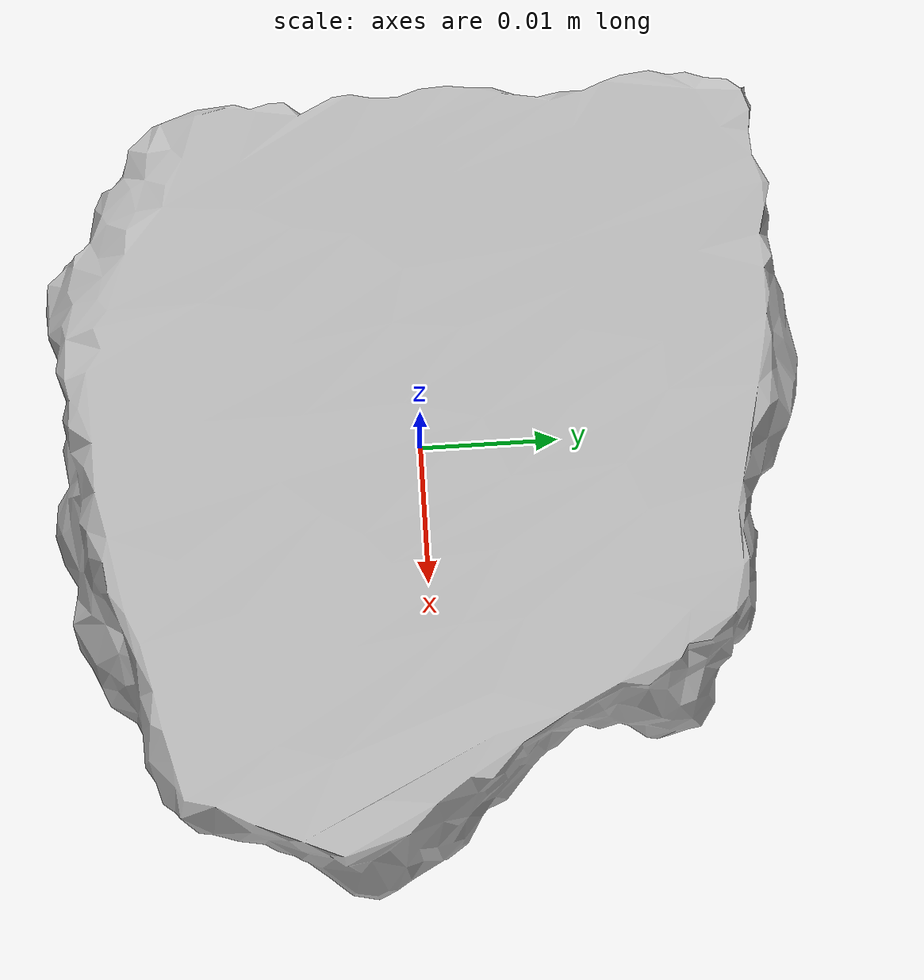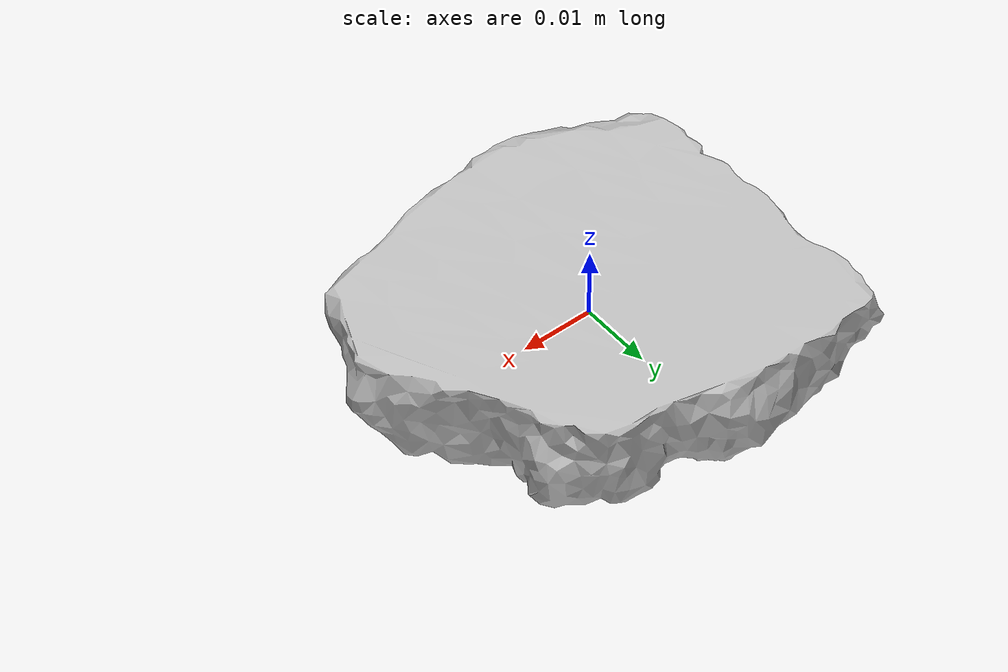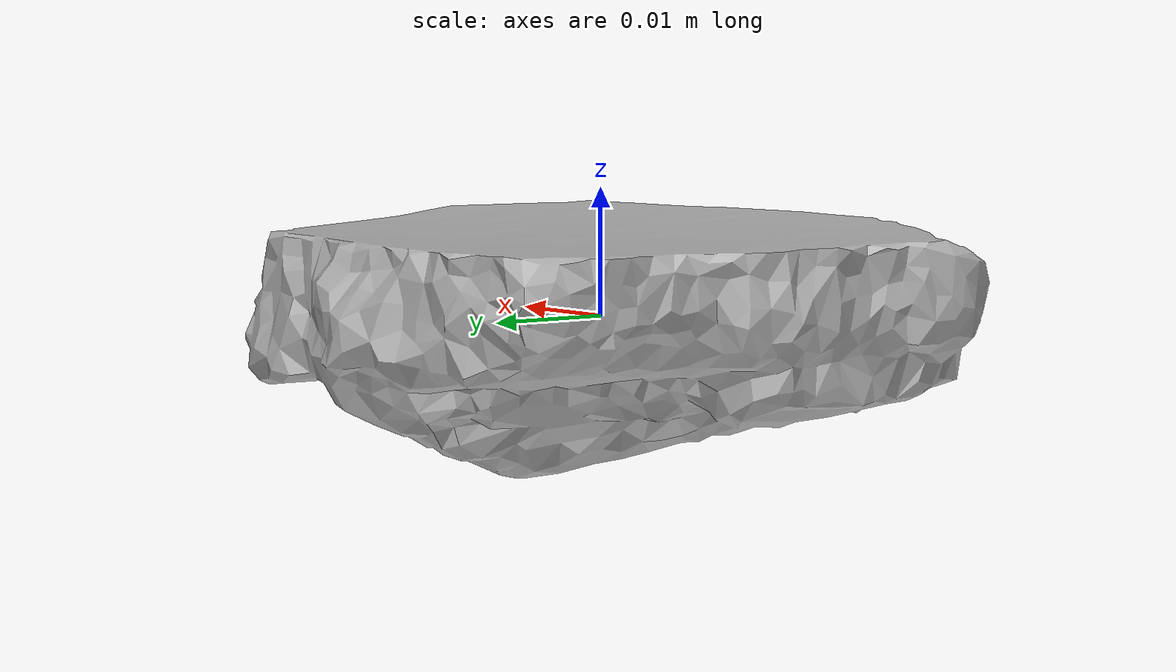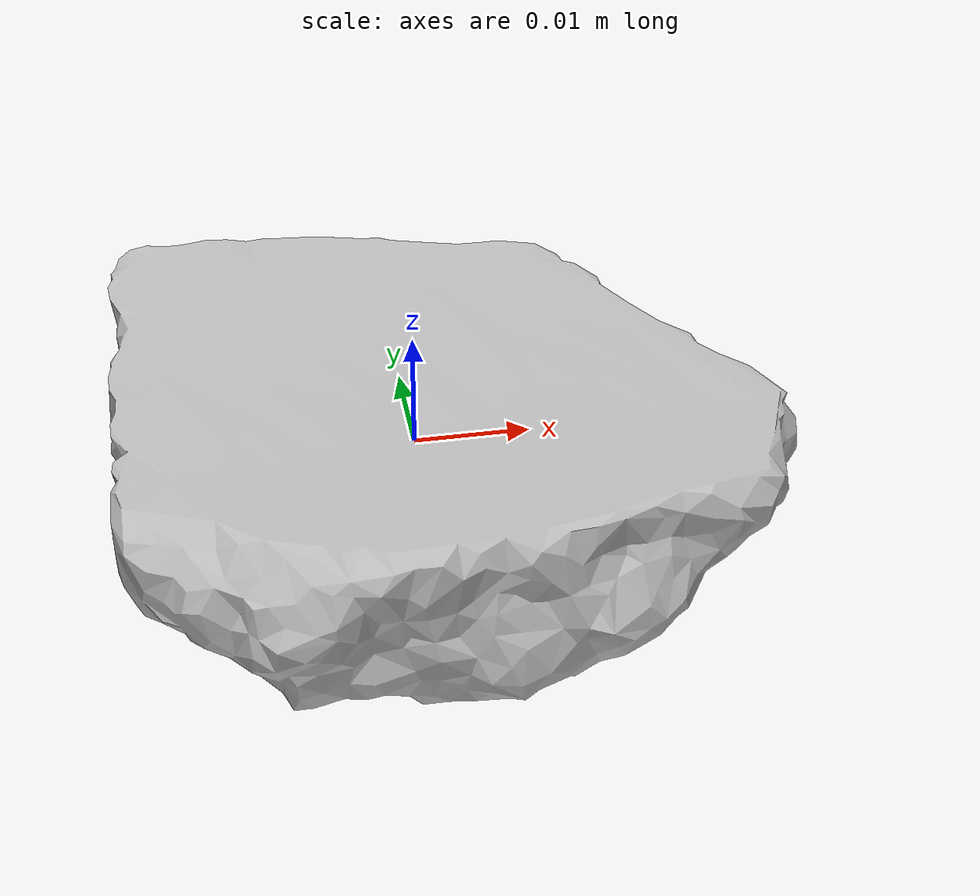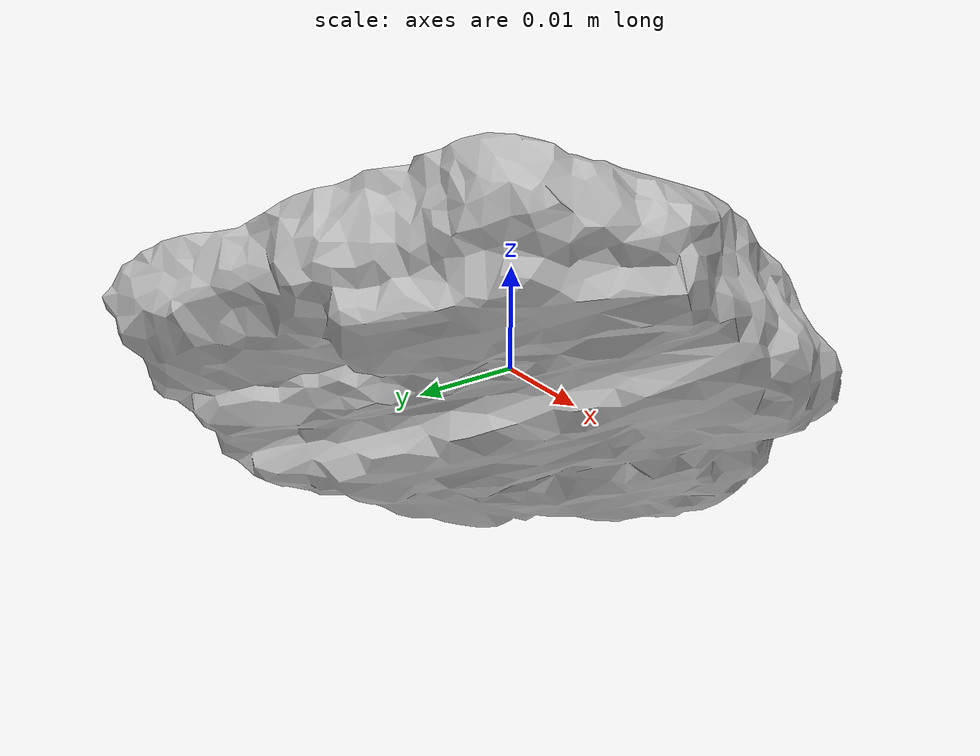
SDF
<sdf version='1.6'>
  <model name='frag3'>
    <link name='fragment_base_link'>
      <inertial>
        <pose>0 0 0 0 -0 0</pose>
        <mass>0.005</mass>
        <inertia>
          <ixx>0.0000316448944</ixx>
          <ixy>-0.</ixy>
          <ixz>0.</ixz>
          <iyy>0.0000207090752</iyy>
          <iyz>0.</iyz>
          <izz>0.0000467305776</izz>
        </inertia>
      </inertial>
      <collision name='fragment_base_link_collision'>
        <pose>0 0 0 0 -0 0</pose>
        <geometry>
          <box>
            <size>0.065 0.06 0.024</size>
          </box>
        </geometry>
      </collision>
      <visual name='fragment_base_link_visual'>
        <pose>0 0 0 0 -0 0</pose>
        <geometry>
          <mesh>
            <scale>1 1 1</scale>
            <uri>model://frag3/meshes/frag_3.stl</uri>
          </mesh>
        </geometry>
      </visual>
    </link>
    <gazebo reference="fragment_base_link">
      <kp>1000000.0</kp>
      <kd>100000.0</kd>
      <mu1>1</mu1>
      <mu2>1</mu2>
      <minDepth>0.001</minDepth>
      <slip1>0</slip1>
      <slip2>0</slip2>
      <maxVel>0</maxVel>
      <torsional>
        <ode>
            <coefficient>1000</coefficient>
            <slip>0</slip>
        </ode>
      </torsional>
    </gazebo>
  </model>
</sdf>
